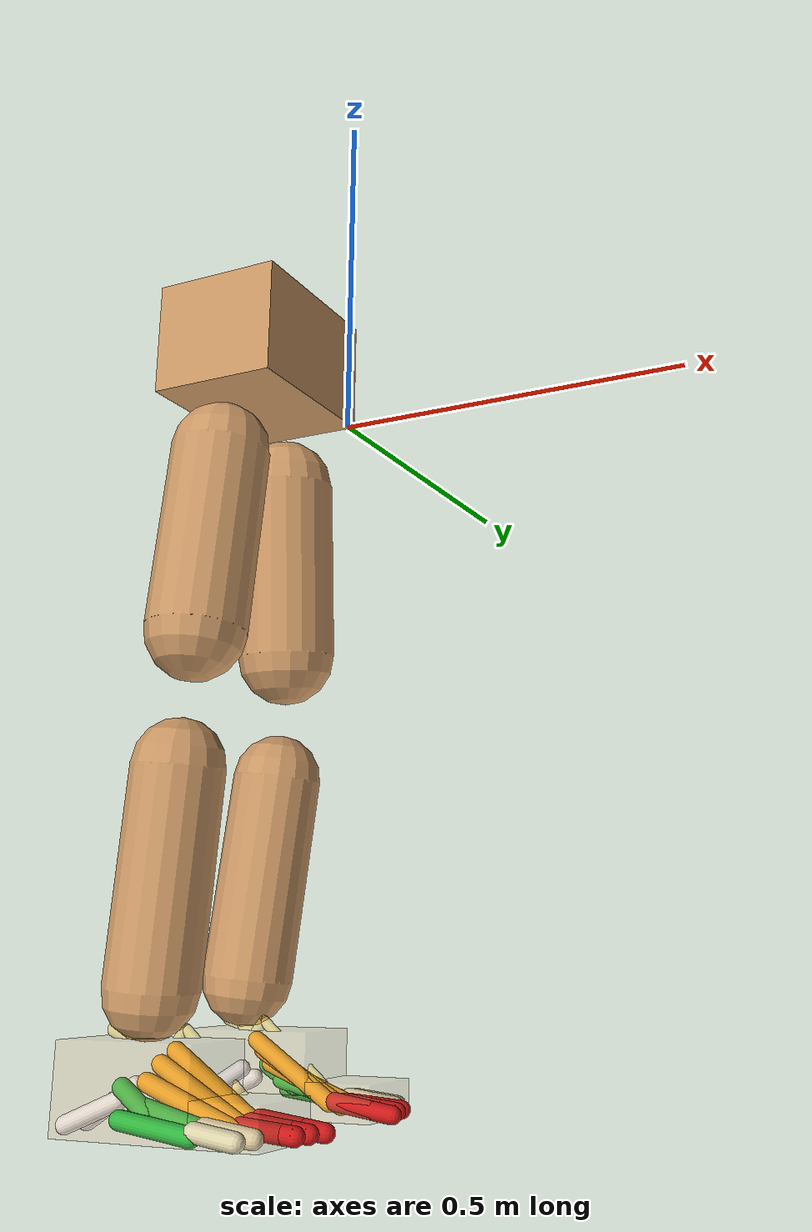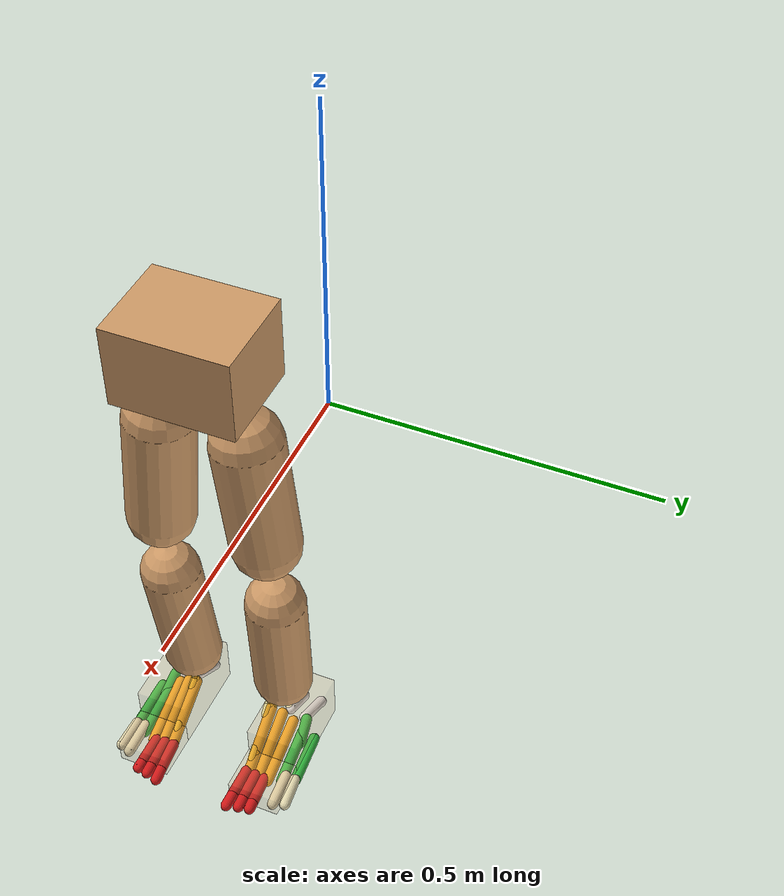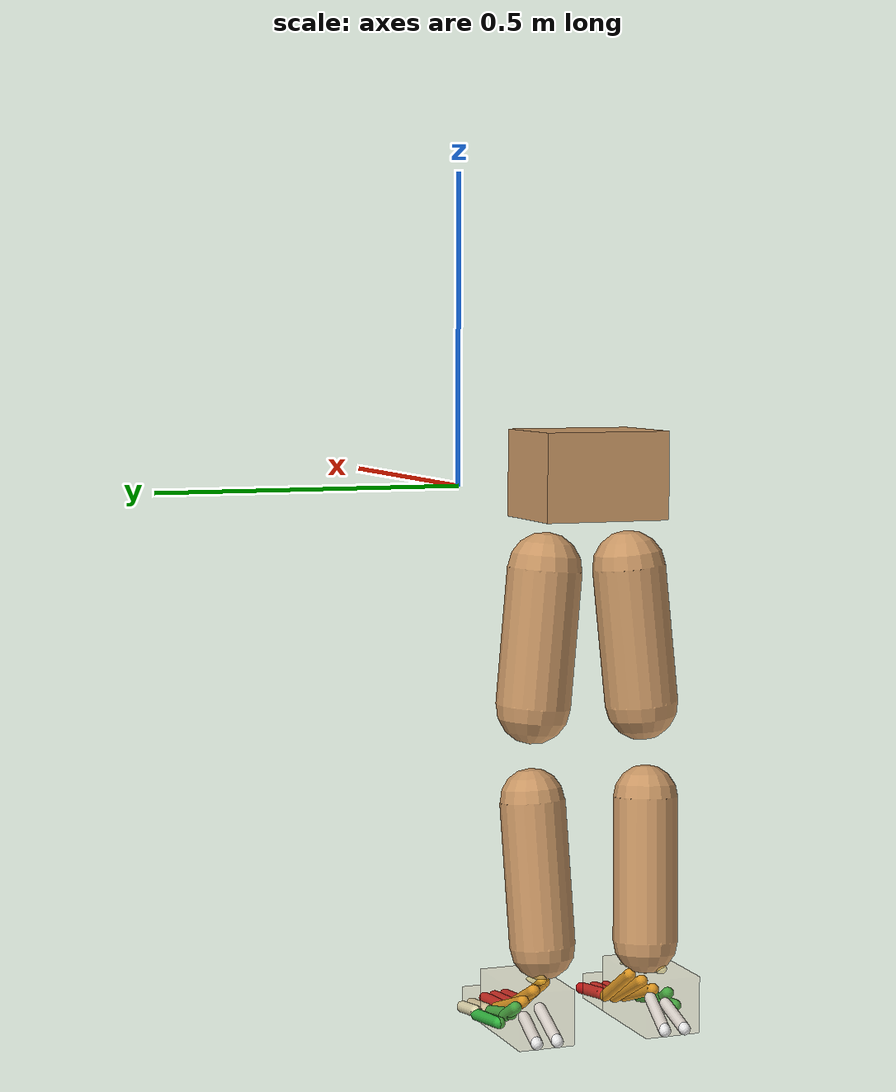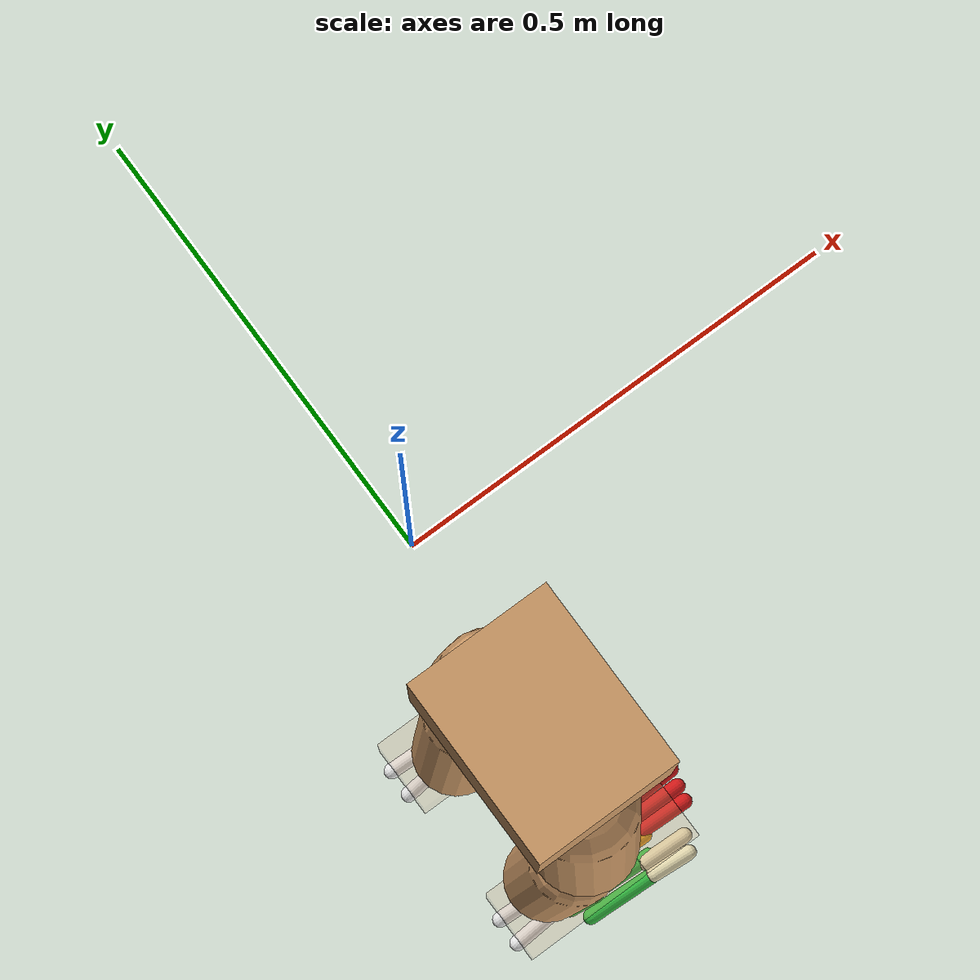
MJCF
<mujoco model="smpl_lower_humanoid_foot_contact">
  <compiler coordinate="local" />
  <option timestep="0.001" integrator="implicitfast" solver="Newton" cone="elliptic" impratio="10" iterations="80" tolerance="1e-10" noslip_iterations="2">
    <flag nativeccd="enable" multiccd="enable" />
  </option>
  <default>
    <default class="foot_bone_contact">
      <geom type="capsule" size="0.010" density="0" condim="6" contype="1" conaffinity="2" friction="1.1 0.03 0.002" solref="0.010 1" solimp="0.90 0.98 0.0015 0.5 2" margin="0.0005" rgba="0.10 0.45 0.85 1" />
    </default>
    <default class="foot_bone_visual">
      <geom type="capsule" size="0.008" density="0" contype="0" conaffinity="0" rgba="0.95 0.78 0.28 0.45" />
    </default>
    <default class="foot_touch_site">
      <site type="box" group="3" rgba="0.9 0.2 0.1 0.18" />
    </default>
  </default>
  <asset>
    <texture type="skybox" builtin="gradient" rgb1=".4 .5 .6" rgb2="0 0 0" width="100" height="100" />
    <texture builtin="flat" height="1278" mark="cross" markrgb="1 1 1" name="texgeom" random="0.01" rgb1="0.8 0.6 0.4" rgb2="0.8 0.6 0.4" type="cube" width="127" />
    <texture builtin="checker" height="100" name="texplane" rgb1="0 0 0" rgb2="0.8 0.8 0.8" type="2d" width="100" />
    <material name="MatPlane" reflectance="0.5" shininess="1" specular="1" texrepeat="60 60" texture="texplane" />
    <material name="geom" texture="texgeom" texuniform="true" />
  </asset>
  <worldbody>
    <light cutoff="100" diffuse="1 1 1" dir="-0 0 -1.3" directional="true" exponent="1" pos="0 0 1.3" specular=".1 .1 .1" />
    <body name="Pelvis" pos="-0.0018 -0.2233 0.0282">
      <geom type="box" pos="-0.0055 -0.0000 -0.0121" size="0.083 0.1069 0.0722" quat="1.0000 0.0000 0.0000 0.0000" density="1000" conaffinity="1" condim="3" contype="7" margin="0.001" rgba="0.8 0.6 .4 1" />
      <body name="L_Hip" pos="-0.0068 0.0695 -0.0914">
        <joint name="L_Hip_x" type="hinge" pos="0 0 0" axis="1 0 0" stiffness="800" damping="80" armature="0.02" range="-180.0000 180.0000" limited="true" />
        <joint name="L_Hip_y" type="hinge" pos="0 0 0" axis="0 1 0" stiffness="800" damping="80" armature="0.02" range="-180.0000 180.0000" limited="true" />
        <joint name="L_Hip_z" type="hinge" pos="0 0 0" axis="0 0 1" stiffness="800" damping="80" armature="0.02" range="-180.0000 180.0000" limited="true" />
        <geom type="capsule" contype="1" conaffinity="1" density="2040.816327" fromto="-0.0009 0.0069 -0.0750 -0.0036 0.0274 -0.3002" size="0.0615" condim="3" margin="0.001" rgba="0.8 0.6 .4 1" />
        <body name="L_Knee" pos="-0.0045 0.0343 -0.3752">
          <joint name="L_Knee_x" type="hinge" pos="0 0 0" axis="1 0 0" stiffness="800" damping="80" armature="0.02" range="-180.0000 180.0000" limited="true" />
          <joint name="L_Knee_y" type="hinge" pos="0 0 0" axis="0 1 0" stiffness="800" damping="80" armature="0.02" range="-180.0000 180.0000" limited="true" />
          <joint name="L_Knee_z" type="hinge" pos="0 0 0" axis="0 0 1" stiffness="800" damping="80" armature="0.02" range="-180.0000 180.0000" limited="true" />
          <geom type="capsule" contype="1" conaffinity="1" density="1234.567901" fromto="-0.0087 -0.0027 -0.0796 -0.0350 -0.0109 -0.3184" size="0.0541" condim="3" margin="0.001" rgba="0.8 0.6 .4 1" />
          <body name="L_Ankle" pos="-0.0437 -0.0136 -0.398">
            <joint name="L_Ankle_x" type="hinge" pos="0 0 0" axis="1 0 0" stiffness="800" damping="80" armature="0.02" range="-180.0000 180.0000" limited="true" />
            <joint name="L_Ankle_y" type="hinge" pos="0 0 0" axis="0 1 0" stiffness="800" damping="80" armature="0.02" range="-180.0000 180.0000" limited="true" />
            <joint name="L_Ankle_z" type="hinge" pos="0 0 0" axis="0 0 1" stiffness="800" damping="80" armature="0.02" range="-180.0000 180.0000" limited="true" />
            <geom name="L_foot_inertial_visual" type="box" pos="0.0242 0.0233 -0.0239" size="0.085 0.0483 0.0464" quat="1.0000 0.0000 0.0000 0.0000" density="1000" conaffinity="0" condim="3" contype="0" margin="0.001" rgba="0.8 0.6 .4 0.18" />
            <body name="L_bones_medial_metatarsal" pos="0.065 0.024 -0.058">
              <inertial pos="0.020 -0.012 0.006" mass="0.28" diaginertia="0.0008 0.0016 0.0014" />
              <geom name="L_metatarsal_1" class="foot_bone_contact" fromto="-0.030 -0.036 0.070  0.070 -0.035 0.006" rgba="0.95 0.64 0.10 1" />
              <geom name="L_metatarsal_2" class="foot_bone_contact" fromto="-0.034 -0.016 0.058  0.074 -0.015 0.001" rgba="0.95 0.64 0.10 1" />
              <geom name="L_metatarsal_3" class="foot_bone_contact" fromto="-0.036 0.004 0.042  0.078 0.004 0.000" rgba="0.95 0.64 0.10 1" />
              <geom name="L_talus_visual" class="foot_bone_visual" fromto="-0.090 -0.006 0.092  -0.040 -0.006 0.076" />
              <geom name="L_navicular_visual" class="foot_bone_visual" fromto="-0.054 -0.026 0.084  -0.010 -0.028 0.064" />
              <geom name="L_cuneiform_visual" class="foot_bone_visual" fromto="-0.014 -0.028 0.064  0.030 -0.030 0.040" />
              <geom name="L_medial_arch_ridge_visual" class="foot_bone_visual" size="0.006" fromto="-0.072 -0.034 0.030  -0.020 -0.038 0.092" />
              <geom name="L_medial_arch_drop_visual" class="foot_bone_visual" size="0.006" fromto="-0.020 -0.038 0.092  0.070 -0.036 0.018" />
              <site name="L_medial_metatarsal_touch" class="foot_touch_site" pos="0.020 -0.016 -0.004" size="0.070 0.035 0.004" />
              <body name="L_bones_heel" pos="-0.070 0.000 0.000">
                <joint name="L_heel_x" type="hinge" pos="0 0 0" axis="1 0 0" damping="0.35" armature="0.0006" />
                <joint name="L_heel_y" type="hinge" pos="0 0 0" axis="0 1 0" damping="0.35" armature="0.0006" />
                <joint name="L_heel_z" type="hinge" pos="0 0 0" axis="0 0 1" damping="0.35" armature="0.0006" />
                <inertial pos="-0.030 0.000 0.000" mass="0.18" diaginertia="0.0005 0.0008 0.0008" />
                <geom name="L_calcaneus_medial" class="foot_bone_contact" fromto="-0.058 -0.018 -0.002  0.006 -0.014 0.036" rgba="0.92 0.92 0.92 1" />
                <geom name="L_calcaneus_lateral" class="foot_bone_contact" fromto="-0.058 0.018 -0.002  0.006 0.014 0.024" rgba="0.92 0.92 0.92 1" />
                <site name="L_heel_touch" class="foot_touch_site" pos="-0.028 0.000 -0.006" size="0.060 0.040 0.004" />
              </body>
              <body name="L_bones_lateral_metatarsal" pos="-0.032 0.028 0.000">
                <joint name="L_lateral_metatarsal_x" type="hinge" pos="0 0 0" axis="1 0 0" damping="0.22" armature="0.0005" />
                <joint name="L_lateral_metatarsal_y" type="hinge" pos="0 0 0" axis="0 1 0" damping="0.22" armature="0.0005" />
                <joint name="L_lateral_metatarsal_z" type="hinge" pos="0 0 0" axis="0 0 1" damping="0.22" armature="0.0005" />
                <inertial pos="0.040 0.006 0.000" mass="0.20" diaginertia="0.0006 0.0012 0.0010" />
                <geom name="L_cuboid" class="foot_bone_contact" fromto="-0.020 -0.004 0.038  0.018 0.000 0.014" rgba="0.20 0.72 0.25 1" />
                <geom name="L_metatarsal_4" class="foot_bone_contact" fromto="0.000 -0.004 0.022  0.100 0.000 0.000" rgba="0.20 0.72 0.25 1" />
                <geom name="L_metatarsal_5" class="foot_bone_contact" fromto="-0.004 0.018 0.010  0.088 0.022 -0.001" rgba="0.20 0.72 0.25 1" />
                <site name="L_lateral_metatarsal_touch" class="foot_touch_site" pos="0.040 0.006 -0.006" size="0.075 0.035 0.004" />
                <body name="L_bones_lateral_phalanges" pos="0.090 0.010 0.000">
                  <joint name="L_lateral_phalanges_x" type="hinge" pos="0 0 0" axis="1 0 0" damping="0.18" armature="0.0004" />
                  <joint name="L_lateral_phalanges_y" type="hinge" pos="0 0 0" axis="0 1 0" damping="0.18" armature="0.0004" />
                  <joint name="L_lateral_phalanges_z" type="hinge" pos="0 0 0" axis="0 0 1" damping="0.18" armature="0.0004" />
                  <inertial pos="0.030 0.004 0.000" mass="0.075" diaginertia="0.00015 0.00030 0.00025" />
                  <geom name="L_phalanx_4" class="foot_bone_contact" fromto="0.000 -0.006 0.006  0.060 -0.004 -0.001" rgba="0.88 0.84 0.68 1" />
                  <geom name="L_phalanx_5" class="foot_bone_contact" fromto="0.000 0.012 0.004  0.052 0.016 -0.002" rgba="0.88 0.84 0.68 1" />
                  <site name="L_lateral_phalanges_touch" class="foot_touch_site" pos="0.030 0.004 -0.006" size="0.055 0.025 0.004" />
                </body>
              </body>
              <body name="L_bones_medial_phalanges" pos="0.078 -0.006 0.000">
                <joint name="L_medial_phalanges_x" type="hinge" pos="0 0 0" axis="1 0 0" damping="0.18" armature="0.0004" />
                <joint name="L_medial_phalanges_y" type="hinge" pos="0 0 0" axis="0 1 0" damping="0.18" armature="0.0004" />
                <joint name="L_medial_phalanges_z" type="hinge" pos="0 0 0" axis="0 0 1" damping="0.18" armature="0.0004" />
                <inertial pos="0.036 -0.014 0.000" mass="0.11" diaginertia="0.00020 0.00042 0.00035" />
                <geom name="L_phalanx_1" class="foot_bone_contact" fromto="0.000 -0.032 0.008  0.076 -0.036 -0.002" rgba="0.82 0.10 0.10 1" />
                <geom name="L_phalanx_2" class="foot_bone_contact" fromto="0.000 -0.014 0.006  0.070 -0.014 -0.001" rgba="0.82 0.10 0.10 1" />
                <geom name="L_phalanx_3" class="foot_bone_contact" fromto="0.000 0.004 0.004  0.066 0.006 -0.001" rgba="0.82 0.10 0.10 1" />
                <site name="L_medial_phalanges_touch" class="foot_touch_site" pos="0.036 -0.014 -0.006" size="0.070 0.045 0.004" />
              </body>
            </body>
            <body name="L_Toe" pos="0.1193 0.0264 -0.0558">
              <joint name="L_Toe_x" type="hinge" pos="0 0 0" axis="1 0 0" stiffness="500" damping="50" armature="0.02" range="-180.0000 180.0000" limited="true" />
              <joint name="L_Toe_y" type="hinge" pos="0 0 0" axis="0 1 0" stiffness="500" damping="50" armature="0.02" range="-180.0000 180.0000" limited="true" />
              <joint name="L_Toe_z" type="hinge" pos="0 0 0" axis="0 0 1" stiffness="500" damping="50" armature="0.02" range="-180.0000 180.0000" limited="true" />
              <geom name="L_toe_inertial_visual" type="box" pos="0.0248 -0.0030 0.0055" size="0.0496 0.0478 0.02" quat="1.0000 0.0000 0.0000 0.0000" density="1000" conaffinity="0" condim="3" contype="0" margin="0.001" rgba="0.8 0.6 .4 0.12" />
            </body>
          </body>
        </body>
      </body>
      <body name="R_Hip" pos="-0.0043 -0.0677 -0.0905">
        <joint name="R_Hip_x" type="hinge" pos="0 0 0" axis="1 0 0" stiffness="800" damping="80" armature="0.02" range="-180.0000 180.0000" limited="true" />
        <joint name="R_Hip_y" type="hinge" pos="0 0 0" axis="0 1 0" stiffness="800" damping="80" armature="0.02" range="-180.0000 180.0000" limited="true" />
        <joint name="R_Hip_z" type="hinge" pos="0 0 0" axis="0 0 1" stiffness="800" damping="80" armature="0.02" range="-180.0000 180.0000" limited="true" />
        <geom type="capsule" contype="1" conaffinity="1" density="2040.816327" fromto="-0.0018 -0.0077 -0.0765 -0.0071 -0.0306 -0.3061" size="0.0606" condim="3" margin="0.001" rgba="0.8 0.6 .4 1" />
        <body name="R_Knee" pos="-0.0089 -0.0383 -0.3826">
          <joint name="R_Knee_x" type="hinge" pos="0 0 0" axis="1 0 0" stiffness="800" damping="80" armature="0.02" range="-180.0000 180.0000" limited="true" />
          <joint name="R_Knee_y" type="hinge" pos="0 0 0" axis="0 1 0" stiffness="800" damping="80" armature="0.02" range="-180.0000 180.0000" limited="true" />
          <joint name="R_Knee_z" type="hinge" pos="0 0 0" axis="0 0 1" stiffness="800" damping="80" armature="0.02" range="-180.0000 180.0000" limited="true" />
          <geom type="capsule" contype="1" conaffinity="1" density="1234.567901" fromto="-0.0085 0.0032 -0.0797 -0.0338 0.0126 -0.3187" size="0.0541" condim="3" margin="0.001" rgba="0.8 0.6 .4 1" />
          <body name="R_Ankle" pos="-0.0423 0.0158 -0.3984">
            <joint name="R_Ankle_x" type="hinge" pos="0 0 0" axis="1 0 0" stiffness="800" damping="80" armature="0.02" range="-180.0000 180.0000" limited="true" />
            <joint name="R_Ankle_y" type="hinge" pos="0 0 0" axis="0 1 0" stiffness="800" damping="80" armature="0.02" range="-180.0000 180.0000" limited="true" />
            <joint name="R_Ankle_z" type="hinge" pos="0 0 0" axis="0 0 1" stiffness="800" damping="80" armature="0.02" range="-180.0000 180.0000" limited="true" />
            <geom name="R_foot_inertial_visual" type="box" pos="0.0256 -0.0212 -0.0174" size="0.0865 0.0483 0.0478" quat="1.0000 0.0000 0.0000 0.0000" density="1000" conaffinity="0" condim="3" contype="0" margin="0.001" rgba="0.8 0.6 .4 0.18" />
            <body name="R_bones_medial_metatarsal" pos="0.065 -0.024 -0.053">
              <inertial pos="0.020 0.012 0.006" mass="0.28" diaginertia="0.0008 0.0016 0.0014" />
              <geom name="R_metatarsal_1" class="foot_bone_contact" fromto="-0.030 0.036 0.070  0.070 0.035 0.006" rgba="0.95 0.64 0.10 1" />
              <geom name="R_metatarsal_2" class="foot_bone_contact" fromto="-0.034 0.016 0.058  0.074 0.015 0.001" rgba="0.95 0.64 0.10 1" />
              <geom name="R_metatarsal_3" class="foot_bone_contact" fromto="-0.036 -0.004 0.042  0.078 -0.004 0.000" rgba="0.95 0.64 0.10 1" />
              <geom name="R_talus_visual" class="foot_bone_visual" fromto="-0.090 0.006 0.092  -0.040 0.006 0.076" />
              <geom name="R_navicular_visual" class="foot_bone_visual" fromto="-0.054 0.026 0.084  -0.010 0.028 0.064" />
              <geom name="R_cuneiform_visual" class="foot_bone_visual" fromto="-0.014 0.028 0.064  0.030 0.030 0.040" />
              <geom name="R_medial_arch_ridge_visual" class="foot_bone_visual" size="0.006" fromto="-0.072 0.034 0.030  -0.020 0.038 0.092" />
              <geom name="R_medial_arch_drop_visual" class="foot_bone_visual" size="0.006" fromto="-0.020 0.038 0.092  0.070 0.036 0.018" />
              <site name="R_medial_metatarsal_touch" class="foot_touch_site" pos="0.020 0.016 -0.004" size="0.070 0.035 0.004" />
              <body name="R_bones_heel" pos="-0.070 0.000 0.000">
                <joint name="R_heel_x" type="hinge" pos="0 0 0" axis="1 0 0" damping="0.35" armature="0.0006" />
                <joint name="R_heel_y" type="hinge" pos="0 0 0" axis="0 1 0" damping="0.35" armature="0.0006" />
                <joint name="R_heel_z" type="hinge" pos="0 0 0" axis="0 0 1" damping="0.35" armature="0.0006" />
                <inertial pos="-0.030 0.000 0.000" mass="0.18" diaginertia="0.0005 0.0008 0.0008" />
                <geom name="R_calcaneus_medial" class="foot_bone_contact" fromto="-0.058 0.018 -0.002  0.006 0.014 0.036" rgba="0.92 0.92 0.92 1" />
                <geom name="R_calcaneus_lateral" class="foot_bone_contact" fromto="-0.058 -0.018 -0.002  0.006 -0.014 0.024" rgba="0.92 0.92 0.92 1" />
                <site name="R_heel_touch" class="foot_touch_site" pos="-0.028 0.000 -0.006" size="0.060 0.040 0.004" />
              </body>
              <body name="R_bones_lateral_metatarsal" pos="-0.032 -0.028 0.000">
                <joint name="R_lateral_metatarsal_x" type="hinge" pos="0 0 0" axis="1 0 0" damping="0.22" armature="0.0005" />
                <joint name="R_lateral_metatarsal_y" type="hinge" pos="0 0 0" axis="0 1 0" damping="0.22" armature="0.0005" />
                <joint name="R_lateral_metatarsal_z" type="hinge" pos="0 0 0" axis="0 0 1" damping="0.22" armature="0.0005" />
                <inertial pos="0.040 -0.006 0.000" mass="0.20" diaginertia="0.0006 0.0012 0.0010" />
                <geom name="R_cuboid" class="foot_bone_contact" fromto="-0.020 0.004 0.038  0.018 0.000 0.014" rgba="0.20 0.72 0.25 1" />
                <geom name="R_metatarsal_4" class="foot_bone_contact" fromto="0.000 0.004 0.022  0.100 0.000 0.000" rgba="0.20 0.72 0.25 1" />
                <geom name="R_metatarsal_5" class="foot_bone_contact" fromto="-0.004 -0.018 0.010  0.088 -0.022 -0.001" rgba="0.20 0.72 0.25 1" />
                <site name="R_lateral_metatarsal_touch" class="foot_touch_site" pos="0.040 -0.006 -0.006" size="0.075 0.035 0.004" />
                <body name="R_bones_lateral_phalanges" pos="0.090 -0.010 0.000">
                  <joint name="R_lateral_phalanges_x" type="hinge" pos="0 0 0" axis="1 0 0" damping="0.18" armature="0.0004" />
                  <joint name="R_lateral_phalanges_y" type="hinge" pos="0 0 0" axis="0 1 0" damping="0.18" armature="0.0004" />
                  <joint name="R_lateral_phalanges_z" type="hinge" pos="0 0 0" axis="0 0 1" damping="0.18" armature="0.0004" />
                  <inertial pos="0.030 -0.004 0.000" mass="0.075" diaginertia="0.00015 0.00030 0.00025" />
                  <geom name="R_phalanx_4" class="foot_bone_contact" fromto="0.000 0.006 0.006  0.060 0.004 -0.001" rgba="0.88 0.84 0.68 1" />
                  <geom name="R_phalanx_5" class="foot_bone_contact" fromto="0.000 -0.012 0.004  0.052 -0.016 -0.002" rgba="0.88 0.84 0.68 1" />
                  <site name="R_lateral_phalanges_touch" class="foot_touch_site" pos="0.030 -0.004 -0.006" size="0.055 0.025 0.004" />
                </body>
              </body>
              <body name="R_bones_medial_phalanges" pos="0.078 0.006 0.000">
                <joint name="R_medial_phalanges_x" type="hinge" pos="0 0 0" axis="1 0 0" damping="0.18" armature="0.0004" />
                <joint name="R_medial_phalanges_y" type="hinge" pos="0 0 0" axis="0 1 0" damping="0.18" armature="0.0004" />
                <joint name="R_medial_phalanges_z" type="hinge" pos="0 0 0" axis="0 0 1" damping="0.18" armature="0.0004" />
                <inertial pos="0.036 0.014 0.000" mass="0.11" diaginertia="0.00020 0.00042 0.00035" />
                <geom name="R_phalanx_1" class="foot_bone_contact" fromto="0.000 0.032 0.008  0.076 0.036 -0.002" rgba="0.82 0.10 0.10 1" />
                <geom name="R_phalanx_2" class="foot_bone_contact" fromto="0.000 0.014 0.006  0.070 0.014 -0.001" rgba="0.82 0.10 0.10 1" />
                <geom name="R_phalanx_3" class="foot_bone_contact" fromto="0.000 -0.004 0.004  0.066 -0.006 -0.001" rgba="0.82 0.10 0.10 1" />
                <site name="R_medial_phalanges_touch" class="foot_touch_site" pos="0.036 0.014 -0.006" size="0.070 0.045 0.004" />
              </body>
            </body>
            <body name="R_Toe" pos="0.1233 -0.0254 -0.0481">
              <joint name="R_Toe_x" type="hinge" pos="0 0 0" axis="1 0 0" stiffness="500" damping="50" armature="0.02" range="-180.0000 180.0000" limited="true" />
              <joint name="R_Toe_y" type="hinge" pos="0 0 0" axis="0 1 0" stiffness="500" damping="50" armature="0.02" range="-180.0000 180.0000" limited="true" />
              <joint name="R_Toe_z" type="hinge" pos="0 0 0" axis="0 0 1" stiffness="500" damping="50" armature="0.02" range="-180.0000 180.0000" limited="true" />
              <geom name="R_toe_inertial_visual" type="box" pos="0.0227 0.0042 0.0045" size="0.0493 0.0479 0.0216" quat="1.0000 0.0000 0.0000 0.0000" density="1000" conaffinity="0" condim="3" contype="0" margin="0.001" rgba="0.8 0.6 .4 0.12" />
            </body>
          </body>
        </body>
      </body>
      <joint type="free" name="Pelvis" limited="false" actuatorfrclimited="false" />
    </body>
  </worldbody>
  <actuator>
    <motor name="L_Hip_x" joint="L_Hip_x" gear="500" />
    <motor name="L_Hip_y" joint="L_Hip_y" gear="500" />
    <motor name="L_Hip_z" joint="L_Hip_z" gear="500" />
    <motor name="L_Knee_x" joint="L_Knee_x" gear="500" />
    <motor name="L_Knee_y" joint="L_Knee_y" gear="500" />
    <motor name="L_Knee_z" joint="L_Knee_z" gear="500" />
    <motor name="L_Ankle_x" joint="L_Ankle_x" gear="500" />
    <motor name="L_Ankle_y" joint="L_Ankle_y" gear="500" />
    <motor name="L_Ankle_z" joint="L_Ankle_z" gear="500" />
    <motor name="L_Toe_x" joint="L_Toe_x" gear="500" />
    <motor name="L_Toe_y" joint="L_Toe_y" gear="500" />
    <motor name="L_Toe_z" joint="L_Toe_z" gear="500" />
    <motor name="R_Hip_x" joint="R_Hip_x" gear="500" />
    <motor name="R_Hip_y" joint="R_Hip_y" gear="500" />
    <motor name="R_Hip_z" joint="R_Hip_z" gear="500" />
    <motor name="R_Knee_x" joint="R_Knee_x" gear="500" />
    <motor name="R_Knee_y" joint="R_Knee_y" gear="500" />
    <motor name="R_Knee_z" joint="R_Knee_z" gear="500" />
    <motor name="R_Ankle_x" joint="R_Ankle_x" gear="500" />
    <motor name="R_Ankle_y" joint="R_Ankle_y" gear="500" />
    <motor name="R_Ankle_z" joint="R_Ankle_z" gear="500" />
    <motor name="R_Toe_x" joint="R_Toe_x" gear="500" />
    <motor name="R_Toe_y" joint="R_Toe_y" gear="500" />
    <motor name="R_Toe_z" joint="R_Toe_z" gear="500" />
  </actuator>
  <contact>
    <exclude body1="R_Knee" body2="R_Toe" />
    <exclude body1="R_Knee" body2="L_Ankle" />
    <exclude body1="R_Knee" body2="L_Toe" />
    <exclude body1="L_Knee" body2="L_Toe" />
    <exclude body1="L_Knee" body2="R_Ankle" />
    <exclude body1="L_Knee" body2="R_Toe" />
    <exclude body1="L_bones_medial_metatarsal" body2="L_bones_heel" />
    <exclude body1="L_bones_medial_metatarsal" body2="L_bones_lateral_metatarsal" />
    <exclude body1="L_bones_medial_metatarsal" body2="L_bones_medial_phalanges" />
    <exclude body1="L_bones_heel" body2="L_bones_lateral_metatarsal" />
    <exclude body1="L_bones_heel" body2="L_bones_medial_phalanges" />
    <exclude body1="L_bones_lateral_metatarsal" body2="L_bones_medial_phalanges" />
    <exclude body1="L_bones_lateral_phalanges" body2="L_bones_medial_phalanges" />
    <exclude body1="R_bones_medial_metatarsal" body2="R_bones_heel" />
    <exclude body1="R_bones_medial_metatarsal" body2="R_bones_lateral_metatarsal" />
    <exclude body1="R_bones_medial_metatarsal" body2="R_bones_medial_phalanges" />
    <exclude body1="R_bones_heel" body2="R_bones_lateral_metatarsal" />
    <exclude body1="R_bones_heel" body2="R_bones_medial_phalanges" />
    <exclude body1="R_bones_lateral_metatarsal" body2="R_bones_medial_phalanges" />
    <exclude body1="R_bones_lateral_phalanges" body2="R_bones_medial_phalanges" />
  </contact>
  <sensor>
    <touch name="L_heel_force" site="L_heel_touch" />
    <touch name="L_medial_metatarsal_force" site="L_medial_metatarsal_touch" />
    <touch name="L_lateral_metatarsal_force" site="L_lateral_metatarsal_touch" />
    <touch name="L_medial_phalanges_force" site="L_medial_phalanges_touch" />
    <touch name="L_lateral_phalanges_force" site="L_lateral_phalanges_touch" />
    <touch name="R_heel_force" site="R_heel_touch" />
    <touch name="R_medial_metatarsal_force" site="R_medial_metatarsal_touch" />
    <touch name="R_lateral_metatarsal_force" site="R_lateral_metatarsal_touch" />
    <touch name="R_medial_phalanges_force" site="R_medial_phalanges_touch" />
    <touch name="R_lateral_phalanges_force" site="R_lateral_phalanges_touch" />
  </sensor>
  <size njmax="700" nconmax="700" />
</mujoco>
